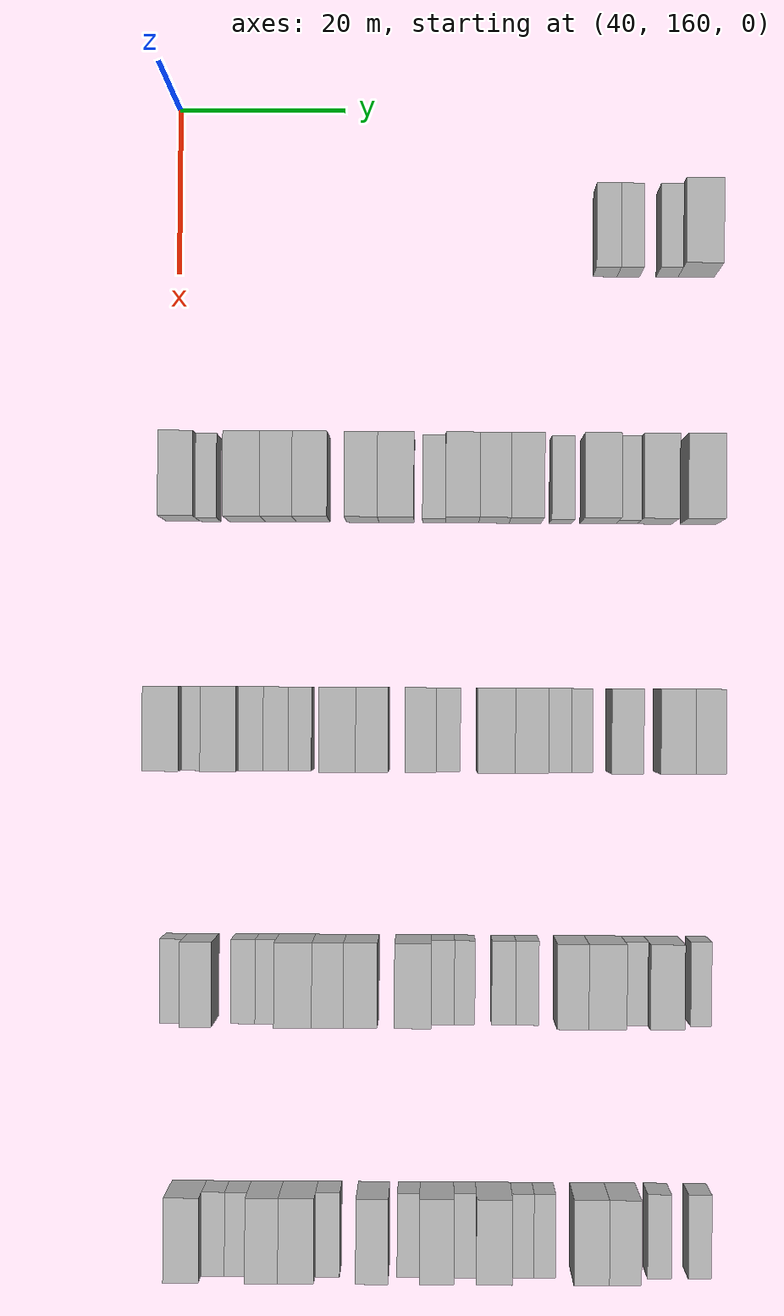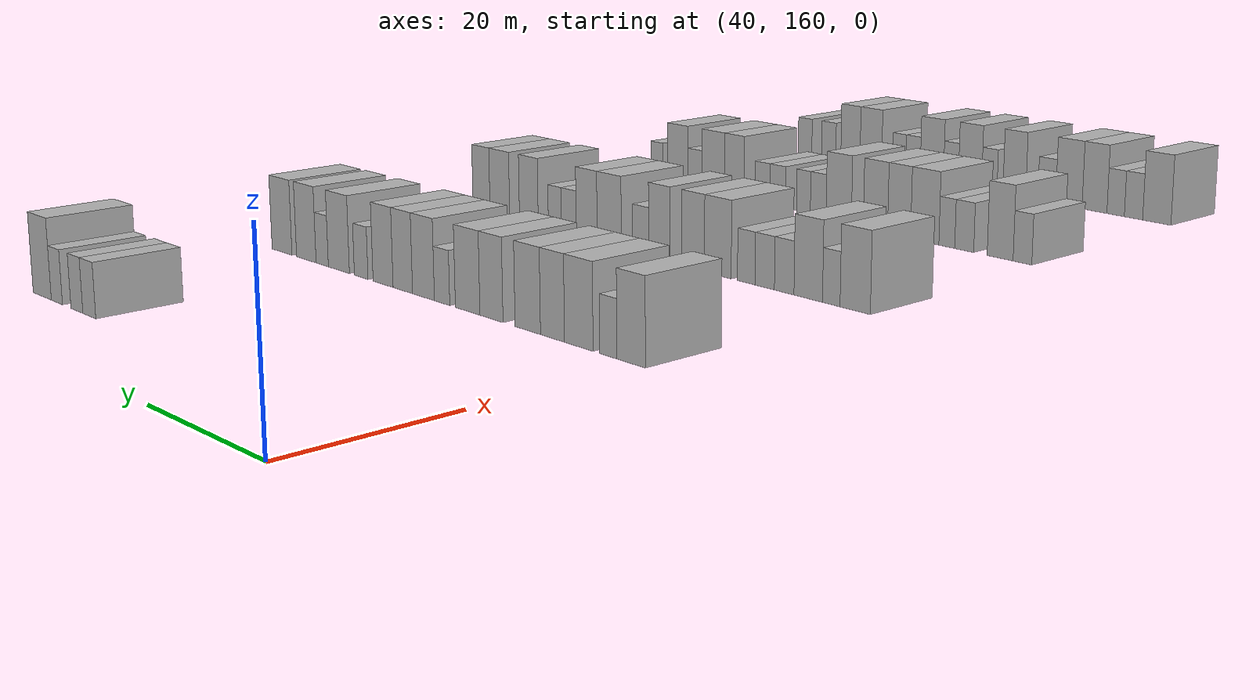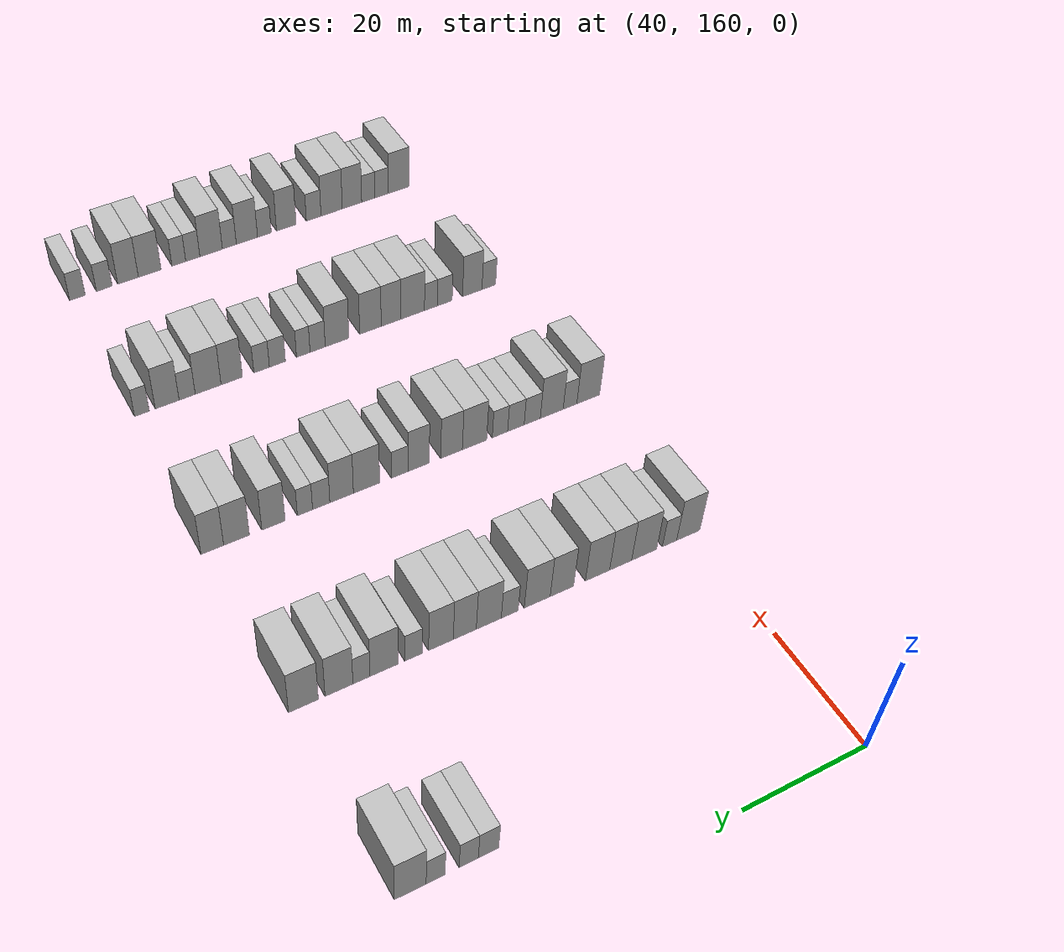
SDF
<sdf version="1.6">
 <world name="default">
  <model name="building_399">
   <static>1</static>
   <pose>55.0000 211.6552 0 0.000000 0.000000 0.000000</pose>
   <link name="link">
    <pose>0 0 3.00 0 0 0</pose>
    <collision name="collision"><geometry><box><size>10.0000 2.9199 6.0000</size></box></geometry></collision>
    <visual name="visual">
     <cast_shadows>0</cast_shadows>
     <geometry><box><size>10.0000 2.9199 6.0000</size></box></geometry>
     <material>
      <script>
       <uri>model://HANNAS_wall/materials/scripts</uri>
       <uri>model://HANNAS_wall/materials/textures</uri>
       <name>vrc/HANNAS_wall</name>
      </script>
     </material>
    </visual>
   </link>
  </model>
  <model name="building_400">
   <static>1</static>
   <pose>55.0000 214.4858 0 0.000000 0.000000 0.000000</pose>
   <link name="link">
    <pose>0 0 3.00 0 0 0</pose>
    <collision name="collision"><geometry><box><size>10.0000 2.7414 6.0000</size></box></geometry></collision>
    <visual name="visual">
     <cast_shadows>0</cast_shadows>
     <geometry><box><size>10.0000 2.7414 6.0000</size></box></geometry>
     <material>
      <script>
       <uri>model://HANNAS_wall/materials/scripts</uri>
       <uri>model://HANNAS_wall/materials/textures</uri>
       <name>vrc/HANNAS_wall</name>
      </script>
     </material>
    </visual>
   </link>
  </model>
  <model name="building_401">
   <static>1</static>
   <pose>55.0000 219.1830 0 0.000000 0.000000 0.000000</pose>
   <link name="link">
    <pose>0 0 3.00 0 0 0</pose>
    <collision name="collision"><geometry><box><size>10.0000 2.6530 6.0000</size></box></geometry></collision>
    <visual name="visual">
     <cast_shadows>0</cast_shadows>
     <geometry><box><size>10.0000 2.6530 6.0000</size></box></geometry>
     <material>
      <script>
       <uri>model://HANNAS_wall/materials/scripts</uri>
       <uri>model://HANNAS_wall/materials/textures</uri>
       <name>vrc/HANNAS_wall</name>
      </script>
     </material>
    </visual>
   </link>
  </model>
  <model name="building_402">
   <static>1</static>
   <pose>55.0000 222.7181 0 0.000000 0.000000 0.000000</pose>
   <link name="link">
    <pose>0 0 4.50 0 0 0</pose>
    <collision name="collision"><geometry><box><size>10.0000 4.4173 9.0000</size></box></geometry></collision>
    <visual name="visual">
     <cast_shadows>0</cast_shadows>
     <geometry><box><size>10.0000 4.4173 9.0000</size></box></geometry>
     <material>
      <script>
       <uri>model://HANNAS_wall/materials/scripts</uri>
       <uri>model://HANNAS_wall/materials/textures</uri>
       <name>vrc/HANNAS_wall</name>
      </script>
     </material>
    </visual>
   </link>
  </model>
  <model name="building_608">
   <static>1</static>
   <pose>85.0000 160.6625 0 0.000000 0.000000 0.000000</pose>
   <link name="link">
    <pose>0 0 4.50 0 0 0</pose>
    <collision name="collision"><geometry><box><size>10.0000 4.1030 9.0000</size></box></geometry></collision>
    <visual name="visual">
     <cast_shadows>0</cast_shadows>
     <geometry><box><size>10.0000 4.1030 9.0000</size></box></geometry>
     <material>
      <script>
       <uri>model://HANNAS_wall/materials/scripts</uri>
       <uri>model://HANNAS_wall/materials/textures</uri>
       <name>vrc/HANNAS_wall</name>
      </script>
     </material>
    </visual>
   </link>
  </model>
  <model name="building_609">
   <static>1</static>
   <pose>85.0000 163.9694 0 0.000000 0.000000 0.000000</pose>
   <link name="link">
    <pose>0 0 3.00 0 0 0</pose>
    <collision name="collision"><geometry><box><size>10.0000 2.5107 6.0000</size></box></geometry></collision>
    <visual name="visual">
     <cast_shadows>0</cast_shadows>
     <geometry><box><size>10.0000 2.5107 6.0000</size></box></geometry>
     <material>
      <script>
       <uri>model://HANNAS_wall/materials/scripts</uri>
       <uri>model://HANNAS_wall/materials/textures</uri>
       <name>vrc/HANNAS_wall</name>
      </script>
     </material>
    </visual>
   </link>
  </model>
  <model name="building_610">
   <static>1</static>
   <pose>85.0000 168.4031 0 0.000000 0.000000 0.000000</pose>
   <link name="link">
    <pose>0 0 4.50 0 0 0</pose>
    <collision name="collision"><geometry><box><size>10.0000 4.3568 9.0000</size></box></geometry></collision>
    <visual name="visual">
     <cast_shadows>0</cast_shadows>
     <geometry><box><size>10.0000 4.3568 9.0000</size></box></geometry>
     <material>
      <script>
       <uri>model://HANNAS_wall/materials/scripts</uri>
       <uri>model://HANNAS_wall/materials/textures</uri>
       <name>vrc/HANNAS_wall</name>
      </script>
     </material>
    </visual>
   </link>
  </model>
  <model name="building_611">
   <static>1</static>
   <pose>85.0000 172.4726 0 0.000000 0.000000 0.000000</pose>
   <link name="link">
    <pose>0 0 4.50 0 0 0</pose>
    <collision name="collision"><geometry><box><size>10.0000 3.7822 9.0000</size></box></geometry></collision>
    <visual name="visual">
     <cast_shadows>0</cast_shadows>
     <geometry><box><size>10.0000 3.7822 9.0000</size></box></geometry>
     <material>
      <script>
       <uri>model://HANNAS_wall/materials/scripts</uri>
       <uri>model://HANNAS_wall/materials/textures</uri>
       <name>vrc/HANNAS_wall</name>
      </script>
     </material>
    </visual>
   </link>
  </model>
  <model name="building_612">
   <static>1</static>
   <pose>85.0000 176.4215 0 0.000000 0.000000 0.000000</pose>
   <link name="link">
    <pose>0 0 4.50 0 0 0</pose>
    <collision name="collision"><geometry><box><size>10.0000 4.1155 9.0000</size></box></geometry></collision>
    <visual name="visual">
     <cast_shadows>0</cast_shadows>
     <geometry><box><size>10.0000 4.1155 9.0000</size></box></geometry>
     <material>
      <script>
       <uri>model://HANNAS_wall/materials/scripts</uri>
       <uri>model://HANNAS_wall/materials/textures</uri>
       <name>vrc/HANNAS_wall</name>
      </script>
     </material>
    </visual>
   </link>
  </model>
  <model name="building_613">
   <static>1</static>
   <pose>85.0000 182.4322 0 0.000000 0.000000 0.000000</pose>
   <link name="link">
    <pose>0 0 4.50 0 0 0</pose>
    <collision name="collision"><geometry><box><size>10.0000 3.9058 9.0000</size></box></geometry></collision>
    <visual name="visual">
     <cast_shadows>0</cast_shadows>
     <geometry><box><size>10.0000 3.9058 9.0000</size></box></geometry>
     <material>
      <script>
       <uri>model://HANNAS_wall/materials/scripts</uri>
       <uri>model://HANNAS_wall/materials/textures</uri>
       <name>vrc/HANNAS_wall</name>
      </script>
     </material>
    </visual>
   </link>
  </model>
  <model name="building_614">
   <static>1</static>
   <pose>85.0000 186.5285 0 0.000000 0.000000 0.000000</pose>
   <link name="link">
    <pose>0 0 4.50 0 0 0</pose>
    <collision name="collision"><geometry><box><size>10.0000 4.2868 9.0000</size></box></geometry></collision>
    <visual name="visual">
     <cast_shadows>0</cast_shadows>
     <geometry><box><size>10.0000 4.2868 9.0000</size></box></geometry>
     <material>
      <script>
       <uri>model://HANNAS_wall/materials/scripts</uri>
       <uri>model://HANNAS_wall/materials/textures</uri>
       <name>vrc/HANNAS_wall</name>
      </script>
     </material>
    </visual>
   </link>
  </model>
  <model name="building_615">
   <static>1</static>
   <pose>85.0000 191.0504 0 0.000000 0.000000 0.000000</pose>
   <link name="link">
    <pose>0 0 3.00 0 0 0</pose>
    <collision name="collision"><geometry><box><size>10.0000 2.7570 6.0000</size></box></geometry></collision>
    <visual name="visual">
     <cast_shadows>0</cast_shadows>
     <geometry><box><size>10.0000 2.7570 6.0000</size></box></geometry>
     <material>
      <script>
       <uri>model://HANNAS_wall/materials/scripts</uri>
       <uri>model://HANNAS_wall/materials/textures</uri>
       <name>vrc/HANNAS_wall</name>
      </script>
     </material>
    </visual>
   </link>
  </model>
  <model name="building_616">
   <static>1</static>
   <pose>85.0000 194.4459 0 0.000000 0.000000 0.000000</pose>
   <link name="link">
    <pose>0 0 4.50 0 0 0</pose>
    <collision name="collision"><geometry><box><size>10.0000 4.0340 9.0000</size></box></geometry></collision>
    <visual name="visual">
     <cast_shadows>0</cast_shadows>
     <geometry><box><size>10.0000 4.0340 9.0000</size></box></geometry>
     <material>
      <script>
       <uri>model://HANNAS_wall/materials/scripts</uri>
       <uri>model://HANNAS_wall/materials/textures</uri>
       <name>vrc/HANNAS_wall</name>
      </script>
     </material>
    </visual>
   </link>
  </model>
  <model name="building_617">
   <static>1</static>
   <pose>85.0000 198.3058 0 0.000000 0.000000 0.000000</pose>
   <link name="link">
    <pose>0 0 4.50 0 0 0</pose>
    <collision name="collision"><geometry><box><size>10.0000 3.6858 9.0000</size></box></geometry></collision>
    <visual name="visual">
     <cast_shadows>0</cast_shadows>
     <geometry><box><size>10.0000 3.6858 9.0000</size></box></geometry>
     <material>
      <script>
       <uri>model://HANNAS_wall/materials/scripts</uri>
       <uri>model://HANNAS_wall/materials/textures</uri>
       <name>vrc/HANNAS_wall</name>
      </script>
     </material>
    </visual>
   </link>
  </model>
  <model name="building_618">
   <static>1</static>
   <pose>85.0000 202.0970 0 0.000000 0.000000 0.000000</pose>
   <link name="link">
    <pose>0 0 4.50 0 0 0</pose>
    <collision name="collision"><geometry><box><size>10.0000 3.8965 9.0000</size></box></geometry></collision>
    <visual name="visual">
     <cast_shadows>0</cast_shadows>
     <geometry><box><size>10.0000 3.8965 9.0000</size></box></geometry>
     <material>
      <script>
       <uri>model://HANNAS_wall/materials/scripts</uri>
       <uri>model://HANNAS_wall/materials/textures</uri>
       <name>vrc/HANNAS_wall</name>
      </script>
     </material>
    </visual>
   </link>
  </model>
  <model name="building_619">
   <static>1</static>
   <pose>85.0000 206.4087 0 0.000000 0.000000 0.000000</pose>
   <link name="link">
    <pose>0 0 3.00 0 0 0</pose>
    <collision name="collision"><geometry><box><size>10.0000 2.7268 6.0000</size></box></geometry></collision>
    <visual name="visual">
     <cast_shadows>0</cast_shadows>
     <geometry><box><size>10.0000 2.7268 6.0000</size></box></geometry>
     <material>
      <script>
       <uri>model://HANNAS_wall/materials/scripts</uri>
       <uri>model://HANNAS_wall/materials/textures</uri>
       <name>vrc/HANNAS_wall</name>
      </script>
     </material>
    </visual>
   </link>
  </model>
  <model name="building_620">
   <static>1</static>
   <pose>85.0000 210.9471 0 0.000000 0.000000 0.000000</pose>
   <link name="link">
    <pose>0 0 4.50 0 0 0</pose>
    <collision name="collision"><geometry><box><size>10.0000 4.3500 9.0000</size></box></geometry></collision>
    <visual name="visual">
     <cast_shadows>0</cast_shadows>
     <geometry><box><size>10.0000 4.3500 9.0000</size></box></geometry>
     <material>
      <script>
       <uri>model://HANNAS_wall/materials/scripts</uri>
       <uri>model://HANNAS_wall/materials/textures</uri>
       <name>vrc/HANNAS_wall</name>
      </script>
     </material>
    </visual>
   </link>
  </model>
  <model name="building_621">
   <static>1</static>
   <pose>85.0000 214.4169 0 0.000000 0.000000 0.000000</pose>
   <link name="link">
    <pose>0 0 3.00 0 0 0</pose>
    <collision name="collision"><geometry><box><size>10.0000 2.5896 6.0000</size></box></geometry></collision>
    <visual name="visual">
     <cast_shadows>0</cast_shadows>
     <geometry><box><size>10.0000 2.5896 6.0000</size></box></geometry>
     <material>
      <script>
       <uri>model://HANNAS_wall/materials/scripts</uri>
       <uri>model://HANNAS_wall/materials/textures</uri>
       <name>vrc/HANNAS_wall</name>
      </script>
     </material>
    </visual>
   </link>
  </model>
  <model name="building_622">
   <static>1</static>
   <pose>85.0000 217.8153 0 0.000000 0.000000 0.000000</pose>
   <link name="link">
    <pose>0 0 4.50 0 0 0</pose>
    <collision name="collision"><geometry><box><size>10.0000 4.2072 9.0000</size></box></geometry></collision>
    <visual name="visual">
     <cast_shadows>0</cast_shadows>
     <geometry><box><size>10.0000 4.2072 9.0000</size></box></geometry>
     <material>
      <script>
       <uri>model://HANNAS_wall/materials/scripts</uri>
       <uri>model://HANNAS_wall/materials/textures</uri>
       <name>vrc/HANNAS_wall</name>
      </script>
     </material>
    </visual>
   </link>
  </model>
  <model name="building_623">
   <static>1</static>
   <pose>85.0000 223.1334 0 0.000000 0.000000 0.000000</pose>
   <link name="link">
    <pose>0 0 4.50 0 0 0</pose>
    <collision name="collision"><geometry><box><size>10.0000 4.4290 9.0000</size></box></geometry></collision>
    <visual name="visual">
     <cast_shadows>0</cast_shadows>
     <geometry><box><size>10.0000 4.4290 9.0000</size></box></geometry>
     <material>
      <script>
       <uri>model://HANNAS_wall/materials/scripts</uri>
       <uri>model://HANNAS_wall/materials/textures</uri>
       <name>vrc/HANNAS_wall</name>
      </script>
     </material>
    </visual>
   </link>
  </model>
  <model name="building_839">
   <static>1</static>
   <pose>115.0000 159.1019 0 0.000000 0.000000 0.000000</pose>
   <link name="link">
    <pose>0 0 4.50 0 0 0</pose>
    <collision name="collision"><geometry><box><size>10.0000 4.2605 9.0000</size></box></geometry></collision>
    <visual name="visual">
     <cast_shadows>0</cast_shadows>
     <geometry><box><size>10.0000 4.2605 9.0000</size></box></geometry>
     <material>
      <script>
       <uri>model://HANNAS_wall/materials/scripts</uri>
       <uri>model://HANNAS_wall/materials/textures</uri>
       <name>vrc/HANNAS_wall</name>
      </script>
     </material>
    </visual>
   </link>
  </model>
  <model name="building_840">
   <static>1</static>
   <pose>115.0000 162.4961 0 0.000000 0.000000 0.000000</pose>
   <link name="link">
    <pose>0 0 3.00 0 0 0</pose>
    <collision name="collision"><geometry><box><size>10.0000 2.5279 6.0000</size></box></geometry></collision>
    <visual name="visual">
     <cast_shadows>0</cast_shadows>
     <geometry><box><size>10.0000 2.5279 6.0000</size></box></geometry>
     <material>
      <script>
       <uri>model://HANNAS_wall/materials/scripts</uri>
       <uri>model://HANNAS_wall/materials/textures</uri>
       <name>vrc/HANNAS_wall</name>
      </script>
     </material>
    </visual>
   </link>
  </model>
  <model name="building_841">
   <static>1</static>
   <pose>115.0000 165.8625 0 0.000000 0.000000 0.000000</pose>
   <link name="link">
    <pose>0 0 4.50 0 0 0</pose>
    <collision name="collision"><geometry><box><size>10.0000 4.2050 9.0000</size></box></geometry></collision>
    <visual name="visual">
     <cast_shadows>0</cast_shadows>
     <geometry><box><size>10.0000 4.2050 9.0000</size></box></geometry>
     <material>
      <script>
       <uri>model://HANNAS_wall/materials/scripts</uri>
       <uri>model://HANNAS_wall/materials/textures</uri>
       <name>vrc/HANNAS_wall</name>
      </script>
     </material>
    </visual>
   </link>
  </model>
  <model name="building_842">
   <static>1</static>
   <pose>115.0000 169.4436 0 0.000000 0.000000 0.000000</pose>
   <link name="link">
    <pose>0 0 3.00 0 0 0</pose>
    <collision name="collision"><geometry><box><size>10.0000 2.9572 6.0000</size></box></geometry></collision>
    <visual name="visual">
     <cast_shadows>0</cast_shadows>
     <geometry><box><size>10.0000 2.9572 6.0000</size></box></geometry>
     <material>
      <script>
       <uri>model://HANNAS_wall/materials/scripts</uri>
       <uri>model://HANNAS_wall/materials/textures</uri>
       <name>vrc/HANNAS_wall</name>
      </script>
     </material>
    </visual>
   </link>
  </model>
  <model name="building_843">
   <static>1</static>
   <pose>115.0000 172.4156 0 0.000000 0.000000 0.000000</pose>
   <link name="link">
    <pose>0 0 3.00 0 0 0</pose>
    <collision name="collision"><geometry><box><size>10.0000 2.9867 6.0000</size></box></geometry></collision>
    <visual name="visual">
     <cast_shadows>0</cast_shadows>
     <geometry><box><size>10.0000 2.9867 6.0000</size></box></geometry>
     <material>
      <script>
       <uri>model://HANNAS_wall/materials/scripts</uri>
       <uri>model://HANNAS_wall/materials/textures</uri>
       <name>vrc/HANNAS_wall</name>
      </script>
     </material>
    </visual>
   </link>
  </model>
  <model name="building_844">
   <static>1</static>
   <pose>115.0000 175.2916 0 0.000000 0.000000 0.000000</pose>
   <link name="link">
    <pose>0 0 3.00 0 0 0</pose>
    <collision name="collision"><geometry><box><size>10.0000 2.7654 6.0000</size></box></geometry></collision>
    <visual name="visual">
     <cast_shadows>0</cast_shadows>
     <geometry><box><size>10.0000 2.7654 6.0000</size></box></geometry>
     <material>
      <script>
       <uri>model://HANNAS_wall/materials/scripts</uri>
       <uri>model://HANNAS_wall/materials/textures</uri>
       <name>vrc/HANNAS_wall</name>
      </script>
     </material>
    </visual>
   </link>
  </model>
  <model name="building_845">
   <static>1</static>
   <pose>115.0000 179.8372 0 0.000000 0.000000 0.000000</pose>
   <link name="link">
    <pose>0 0 4.50 0 0 0</pose>
    <collision name="collision"><geometry><box><size>10.0000 4.3258 9.0000</size></box></geometry></collision>
    <visual name="visual">
     <cast_shadows>0</cast_shadows>
     <geometry><box><size>10.0000 4.3258 9.0000</size></box></geometry>
     <material>
      <script>
       <uri>model://HANNAS_wall/materials/scripts</uri>
       <uri>model://HANNAS_wall/materials/textures</uri>
       <name>vrc/HANNAS_wall</name>
      </script>
     </material>
    </visual>
   </link>
  </model>
  <model name="building_846">
   <static>1</static>
   <pose>115.0000 183.9103 0 0.000000 0.000000 0.000000</pose>
   <link name="link">
    <pose>0 0 4.50 0 0 0</pose>
    <collision name="collision"><geometry><box><size>10.0000 3.8206 9.0000</size></box></geometry></collision>
    <visual name="visual">
     <cast_shadows>0</cast_shadows>
     <geometry><box><size>10.0000 3.8206 9.0000</size></box></geometry>
     <material>
      <script>
       <uri>model://HANNAS_wall/materials/scripts</uri>
       <uri>model://HANNAS_wall/materials/textures</uri>
       <name>vrc/HANNAS_wall</name>
      </script>
     </material>
    </visual>
   </link>
  </model>
  <model name="building_847">
   <static>1</static>
   <pose>115.0000 189.6555 0 0.000000 0.000000 0.000000</pose>
   <link name="link">
    <pose>0 0 4.50 0 0 0</pose>
    <collision name="collision"><geometry><box><size>10.0000 3.6697 9.0000</size></box></geometry></collision>
    <visual name="visual">
     <cast_shadows>0</cast_shadows>
     <geometry><box><size>10.0000 3.6697 9.0000</size></box></geometry>
     <material>
      <script>
       <uri>model://HANNAS_wall/materials/scripts</uri>
       <uri>model://HANNAS_wall/materials/textures</uri>
       <name>vrc/HANNAS_wall</name>
      </script>
     </material>
    </visual>
   </link>
  </model>
  <model name="building_848">
   <static>1</static>
   <pose>115.0000 192.9155 0 0.000000 0.000000 0.000000</pose>
   <link name="link">
    <pose>0 0 3.00 0 0 0</pose>
    <collision name="collision"><geometry><box><size>10.0000 2.8504 6.0000</size></box></geometry></collision>
    <visual name="visual">
     <cast_shadows>0</cast_shadows>
     <geometry><box><size>10.0000 2.8504 6.0000</size></box></geometry>
     <material>
      <script>
       <uri>model://HANNAS_wall/materials/scripts</uri>
       <uri>model://HANNAS_wall/materials/textures</uri>
       <name>vrc/HANNAS_wall</name>
      </script>
     </material>
    </visual>
   </link>
  </model>
  <model name="building_849">
   <static>1</static>
   <pose>115.0000 198.5505 0 0.000000 0.000000 0.000000</pose>
   <link name="link">
    <pose>0 0 4.50 0 0 0</pose>
    <collision name="collision"><geometry><box><size>10.0000 4.4196 9.0000</size></box></geometry></collision>
    <visual name="visual">
     <cast_shadows>0</cast_shadows>
     <geometry><box><size>10.0000 4.4196 9.0000</size></box></geometry>
     <material>
      <script>
       <uri>model://HANNAS_wall/materials/scripts</uri>
       <uri>model://HANNAS_wall/materials/textures</uri>
       <name>vrc/HANNAS_wall</name>
      </script>
     </material>
    </visual>
   </link>
  </model>
  <model name="building_850">
   <static>1</static>
   <pose>115.0000 202.7268 0 0.000000 0.000000 0.000000</pose>
   <link name="link">
    <pose>0 0 4.50 0 0 0</pose>
    <collision name="collision"><geometry><box><size>10.0000 3.9329 9.0000</size></box></geometry></collision>
    <visual name="visual">
     <cast_shadows>0</cast_shadows>
     <geometry><box><size>10.0000 3.9329 9.0000</size></box></geometry>
     <material>
      <script>
       <uri>model://HANNAS_wall/materials/scripts</uri>
       <uri>model://HANNAS_wall/materials/textures</uri>
       <name>vrc/HANNAS_wall</name>
      </script>
     </material>
    </visual>
   </link>
  </model>
  <model name="building_851">
   <static>1</static>
   <pose>115.0000 206.1277 0 0.000000 0.000000 0.000000</pose>
   <link name="link">
    <pose>0 0 3.00 0 0 0</pose>
    <collision name="collision"><geometry><box><size>10.0000 2.8688 6.0000</size></box></geometry></collision>
    <visual name="visual">
     <cast_shadows>0</cast_shadows>
     <geometry><box><size>10.0000 2.8688 6.0000</size></box></geometry>
     <material>
      <script>
       <uri>model://HANNAS_wall/materials/scripts</uri>
       <uri>model://HANNAS_wall/materials/textures</uri>
       <name>vrc/HANNAS_wall</name>
      </script>
     </material>
    </visual>
   </link>
  </model>
  <model name="building_852">
   <static>1</static>
   <pose>115.0000 208.8140 0 0.000000 0.000000 0.000000</pose>
   <link name="link">
    <pose>0 0 3.00 0 0 0</pose>
    <collision name="collision"><geometry><box><size>10.0000 2.5037 6.0000</size></box></geometry></collision>
    <visual name="visual">
     <cast_shadows>0</cast_shadows>
     <geometry><box><size>10.0000 2.5037 6.0000</size></box></geometry>
     <material>
      <script>
       <uri>model://HANNAS_wall/materials/scripts</uri>
       <uri>model://HANNAS_wall/materials/textures</uri>
       <name>vrc/HANNAS_wall</name>
      </script>
     </material>
    </visual>
   </link>
  </model>
  <model name="building_853">
   <static>1</static>
   <pose>115.0000 213.9521 0 0.000000 0.000000 0.000000</pose>
   <link name="link">
    <pose>0 0 4.50 0 0 0</pose>
    <collision name="collision"><geometry><box><size>10.0000 3.7725 9.0000</size></box></geometry></collision>
    <visual name="visual">
     <cast_shadows>0</cast_shadows>
     <geometry><box><size>10.0000 3.7725 9.0000</size></box></geometry>
     <material>
      <script>
       <uri>model://HANNAS_wall/materials/scripts</uri>
       <uri>model://HANNAS_wall/materials/textures</uri>
       <name>vrc/HANNAS_wall</name>
      </script>
     </material>
    </visual>
   </link>
  </model>
  <model name="building_854">
   <static>1</static>
   <pose>115.0000 219.8862 0 0.000000 0.000000 0.000000</pose>
   <link name="link">
    <pose>0 0 4.50 0 0 0</pose>
    <collision name="collision"><geometry><box><size>10.0000 4.0958 9.0000</size></box></geometry></collision>
    <visual name="visual">
     <cast_shadows>0</cast_shadows>
     <geometry><box><size>10.0000 4.0958 9.0000</size></box></geometry>
     <material>
      <script>
       <uri>model://HANNAS_wall/materials/scripts</uri>
       <uri>model://HANNAS_wall/materials/textures</uri>
       <name>vrc/HANNAS_wall</name>
      </script>
     </material>
    </visual>
   </link>
  </model>
  <model name="building_855">
   <static>1</static>
   <pose>115.0000 223.7349 0 0.000000 0.000000 0.000000</pose>
   <link name="link">
    <pose>0 0 4.50 0 0 0</pose>
    <collision name="collision"><geometry><box><size>10.0000 3.6015 9.0000</size></box></geometry></collision>
    <visual name="visual">
     <cast_shadows>0</cast_shadows>
     <geometry><box><size>10.0000 3.6015 9.0000</size></box></geometry>
     <material>
      <script>
       <uri>model://HANNAS_wall/materials/scripts</uri>
       <uri>model://HANNAS_wall/materials/textures</uri>
       <name>vrc/HANNAS_wall</name>
      </script>
     </material>
    </visual>
   </link>
  </model>
  <model name="building_1063">
   <static>1</static>
   <pose>145.0000 160.1419 0 0.000000 0.000000 0.000000</pose>
   <link name="link">
    <pose>0 0 3.00 0 0 0</pose>
    <collision name="collision"><geometry><box><size>10.0000 2.6793 6.0000</size></box></geometry></collision>
    <visual name="visual">
     <cast_shadows>0</cast_shadows>
     <geometry><box><size>10.0000 2.6793 6.0000</size></box></geometry>
     <material>
      <script>
       <uri>model://HANNAS_wall/materials/scripts</uri>
       <uri>model://HANNAS_wall/materials/textures</uri>
       <name>vrc/HANNAS_wall</name>
      </script>
     </material>
    </visual>
   </link>
  </model>
  <model name="building_1064">
   <static>1</static>
   <pose>145.0000 163.3742 0 0.000000 0.000000 0.000000</pose>
   <link name="link">
    <pose>0 0 4.50 0 0 0</pose>
    <collision name="collision"><geometry><box><size>10.0000 3.7852 9.0000</size></box></geometry></collision>
    <visual name="visual">
     <cast_shadows>0</cast_shadows>
     <geometry><box><size>10.0000 3.7852 9.0000</size></box></geometry>
     <material>
      <script>
       <uri>model://HANNAS_wall/materials/scripts</uri>
       <uri>model://HANNAS_wall/materials/textures</uri>
       <name>vrc/HANNAS_wall</name>
      </script>
     </material>
    </visual>
   </link>
  </model>
  <model name="building_1065">
   <static>1</static>
   <pose>145.0000 168.7018 0 0.000000 0.000000 0.000000</pose>
   <link name="link">
    <pose>0 0 3.00 0 0 0</pose>
    <collision name="collision"><geometry><box><size>10.0000 2.8700 6.0000</size></box></geometry></collision>
    <visual name="visual">
     <cast_shadows>0</cast_shadows>
     <geometry><box><size>10.0000 2.8700 6.0000</size></box></geometry>
     <material>
      <script>
       <uri>model://HANNAS_wall/materials/scripts</uri>
       <uri>model://HANNAS_wall/materials/textures</uri>
       <name>vrc/HANNAS_wall</name>
      </script>
     </material>
    </visual>
   </link>
  </model>
  <model name="building_1066">
   <static>1</static>
   <pose>145.0000 171.3562 0 0.000000 0.000000 0.000000</pose>
   <link name="link">
    <pose>0 0 3.00 0 0 0</pose>
    <collision name="collision"><geometry><box><size>10.0000 2.4388 6.0000</size></box></geometry></collision>
    <visual name="visual">
     <cast_shadows>0</cast_shadows>
     <geometry><box><size>10.0000 2.4388 6.0000</size></box></geometry>
     <material>
      <script>
       <uri>model://HANNAS_wall/materials/scripts</uri>
       <uri>model://HANNAS_wall/materials/textures</uri>
       <name>vrc/HANNAS_wall</name>
      </script>
     </material>
    </visual>
   </link>
  </model>
  <model name="building_1067">
   <static>1</static>
   <pose>145.0000 174.7955 0 0.000000 0.000000 0.000000</pose>
   <link name="link">
    <pose>0 0 4.50 0 0 0</pose>
    <collision name="collision"><geometry><box><size>10.0000 4.4399 9.0000</size></box></geometry></collision>
    <visual name="visual">
     <cast_shadows>0</cast_shadows>
     <geometry><box><size>10.0000 4.4399 9.0000</size></box></geometry>
     <material>
      <script>
       <uri>model://HANNAS_wall/materials/scripts</uri>
       <uri>model://HANNAS_wall/materials/textures</uri>
       <name>vrc/HANNAS_wall</name>
      </script>
     </material>
    </visual>
   </link>
  </model>
  <model name="building_1068">
   <static>1</static>
   <pose>145.0000 178.8718 0 0.000000 0.000000 0.000000</pose>
   <link name="link">
    <pose>0 0 4.50 0 0 0</pose>
    <collision name="collision"><geometry><box><size>10.0000 3.7128 9.0000</size></box></geometry></collision>
    <visual name="visual">
     <cast_shadows>0</cast_shadows>
     <geometry><box><size>10.0000 3.7128 9.0000</size></box></geometry>
     <material>
      <script>
       <uri>model://HANNAS_wall/materials/scripts</uri>
       <uri>model://HANNAS_wall/materials/textures</uri>
       <name>vrc/HANNAS_wall</name>
      </script>
     </material>
    </visual>
   </link>
  </model>
  <model name="building_1069">
   <static>1</static>
   <pose>145.0000 182.7253 0 0.000000 0.000000 0.000000</pose>
   <link name="link">
    <pose>0 0 4.50 0 0 0</pose>
    <collision name="collision"><geometry><box><size>10.0000 3.9942 9.0000</size></box></geometry></collision>
    <visual name="visual">
     <cast_shadows>0</cast_shadows>
     <geometry><box><size>10.0000 3.9942 9.0000</size></box></geometry>
     <material>
      <script>
       <uri>model://HANNAS_wall/materials/scripts</uri>
       <uri>model://HANNAS_wall/materials/textures</uri>
       <name>vrc/HANNAS_wall</name>
      </script>
     </material>
    </visual>
   </link>
  </model>
  <model name="building_1070">
   <static>1</static>
   <pose>145.0000 188.8832 0 0.000000 0.000000 0.000000</pose>
   <link name="link">
    <pose>0 0 4.50 0 0 0</pose>
    <collision name="collision"><geometry><box><size>10.0000 4.3217 9.0000</size></box></geometry></collision>
    <visual name="visual">
     <cast_shadows>0</cast_shadows>
     <geometry><box><size>10.0000 4.3217 9.0000</size></box></geometry>
     <material>
      <script>
       <uri>model://HANNAS_wall/materials/scripts</uri>
       <uri>model://HANNAS_wall/materials/textures</uri>
       <name>vrc/HANNAS_wall</name>
      </script>
     </material>
    </visual>
   </link>
  </model>
  <model name="building_1071">
   <static>1</static>
   <pose>145.0000 192.4209 0 0.000000 0.000000 0.000000</pose>
   <link name="link">
    <pose>0 0 3.00 0 0 0</pose>
    <collision name="collision"><geometry><box><size>10.0000 2.7535 6.0000</size></box></geometry></collision>
    <visual name="visual">
     <cast_shadows>0</cast_shadows>
     <geometry><box><size>10.0000 2.7535 6.0000</size></box></geometry>
     <material>
      <script>
       <uri>model://HANNAS_wall/materials/scripts</uri>
       <uri>model://HANNAS_wall/materials/textures</uri>
       <name>vrc/HANNAS_wall</name>
      </script>
     </material>
    </visual>
   </link>
  </model>
  <model name="building_1072">
   <static>1</static>
   <pose>145.0000 195.0165 0 0.000000 0.000000 0.000000</pose>
   <link name="link">
    <pose>0 0 3.00 0 0 0</pose>
    <collision name="collision"><geometry><box><size>10.0000 2.4377 6.0000</size></box></geometry></collision>
    <visual name="visual">
     <cast_shadows>0</cast_shadows>
     <geometry><box><size>10.0000 2.4377 6.0000</size></box></geometry>
     <material>
      <script>
       <uri>model://HANNAS_wall/materials/scripts</uri>
       <uri>model://HANNAS_wall/materials/textures</uri>
       <name>vrc/HANNAS_wall</name>
      </script>
     </material>
    </visual>
   </link>
  </model>
  <model name="building_1073">
   <static>1</static>
   <pose>145.0000 199.6575 0 0.000000 0.000000 0.000000</pose>
   <link name="link">
    <pose>0 0 3.00 0 0 0</pose>
    <collision name="collision"><geometry><box><size>10.0000 2.8443 6.0000</size></box></geometry></collision>
    <visual name="visual">
     <cast_shadows>0</cast_shadows>
     <geometry><box><size>10.0000 2.8443 6.0000</size></box></geometry>
     <material>
      <script>
       <uri>model://HANNAS_wall/materials/scripts</uri>
       <uri>model://HANNAS_wall/materials/textures</uri>
       <name>vrc/HANNAS_wall</name>
      </script>
     </material>
    </visual>
   </link>
  </model>
  <model name="building_1074">
   <static>1</static>
   <pose>145.0000 202.4563 0 0.000000 0.000000 0.000000</pose>
   <link name="link">
    <pose>0 0 3.00 0 0 0</pose>
    <collision name="collision"><geometry><box><size>10.0000 2.7533 6.0000</size></box></geometry></collision>
    <visual name="visual">
     <cast_shadows>0</cast_shadows>
     <geometry><box><size>10.0000 2.7533 6.0000</size></box></geometry>
     <material>
      <script>
       <uri>model://HANNAS_wall/materials/scripts</uri>
       <uri>model://HANNAS_wall/materials/textures</uri>
       <name>vrc/HANNAS_wall</name>
      </script>
     </material>
    </visual>
   </link>
  </model>
  <model name="building_1075">
   <static>1</static>
   <pose>145.0000 207.7000 0 0.000000 0.000000 0.000000</pose>
   <link name="link">
    <pose>0 0 4.50 0 0 0</pose>
    <collision name="collision"><geometry><box><size>10.0000 3.7341 9.0000</size></box></geometry></collision>
    <visual name="visual">
     <cast_shadows>0</cast_shadows>
     <geometry><box><size>10.0000 3.7341 9.0000</size></box></geometry>
     <material>
      <script>
       <uri>model://HANNAS_wall/materials/scripts</uri>
       <uri>model://HANNAS_wall/materials/textures</uri>
       <name>vrc/HANNAS_wall</name>
      </script>
     </material>
    </visual>
   </link>
  </model>
  <model name="building_1076">
   <static>1</static>
   <pose>145.0000 211.8009 0 0.000000 0.000000 0.000000</pose>
   <link name="link">
    <pose>0 0 4.50 0 0 0</pose>
    <collision name="collision"><geometry><box><size>10.0000 4.4678 9.0000</size></box></geometry></collision>
    <visual name="visual">
     <cast_shadows>0</cast_shadows>
     <geometry><box><size>10.0000 4.4678 9.0000</size></box></geometry>
     <material>
      <script>
       <uri>model://HANNAS_wall/materials/scripts</uri>
       <uri>model://HANNAS_wall/materials/textures</uri>
       <name>vrc/HANNAS_wall</name>
      </script>
     </material>
    </visual>
   </link>
  </model>
  <model name="building_1077">
   <static>1</static>
   <pose>145.0000 215.4156 0 0.000000 0.000000 0.000000</pose>
   <link name="link">
    <pose>0 0 3.00 0 0 0</pose>
    <collision name="collision"><geometry><box><size>10.0000 2.7615 6.0000</size></box></geometry></collision>
    <visual name="visual">
     <cast_shadows>0</cast_shadows>
     <geometry><box><size>10.0000 2.7615 6.0000</size></box></geometry>
     <material>
      <script>
       <uri>model://HANNAS_wall/materials/scripts</uri>
       <uri>model://HANNAS_wall/materials/textures</uri>
       <name>vrc/HANNAS_wall</name>
      </script>
     </material>
    </visual>
   </link>
  </model>
  <model name="building_1078">
   <static>1</static>
   <pose>145.0000 218.8249 0 0.000000 0.000000 0.000000</pose>
   <link name="link">
    <pose>0 0 4.50 0 0 0</pose>
    <collision name="collision"><geometry><box><size>10.0000 4.0572 9.0000</size></box></geometry></collision>
    <visual name="visual">
     <cast_shadows>0</cast_shadows>
     <geometry><box><size>10.0000 4.0572 9.0000</size></box></geometry>
     <material>
      <script>
       <uri>model://HANNAS_wall/materials/scripts</uri>
       <uri>model://HANNAS_wall/materials/textures</uri>
       <name>vrc/HANNAS_wall</name>
      </script>
     </material>
    </visual>
   </link>
  </model>
  <model name="building_1079">
   <static>1</static>
   <pose>145.0000 223.0940 0 0.000000 0.000000 0.000000</pose>
   <link name="link">
    <pose>0 0 3.00 0 0 0</pose>
    <collision name="collision"><geometry><box><size>10.0000 2.4808 6.0000</size></box></geometry></collision>
    <visual name="visual">
     <cast_shadows>0</cast_shadows>
     <geometry><box><size>10.0000 2.4808 6.0000</size></box></geometry>
     <material>
      <script>
       <uri>model://HANNAS_wall/materials/scripts</uri>
       <uri>model://HANNAS_wall/materials/textures</uri>
       <name>vrc/HANNAS_wall</name>
      </script>
     </material>
    </visual>
   </link>
  </model>
  <model name="building_1288">
   <static>1</static>
   <pose>175.0000 161.8345 0 0.000000 0.000000 0.000000</pose>
   <link name="link">
    <pose>0 0 4.50 0 0 0</pose>
    <collision name="collision"><geometry><box><size>10.0000 4.1724 9.0000</size></box></geometry></collision>
    <visual name="visual">
     <cast_shadows>0</cast_shadows>
     <geometry><box><size>10.0000 4.1724 9.0000</size></box></geometry>
     <material>
      <script>
       <uri>model://HANNAS_wall/materials/scripts</uri>
       <uri>model://HANNAS_wall/materials/textures</uri>
       <name>vrc/HANNAS_wall</name>
      </script>
     </material>
    </visual>
   </link>
  </model>
  <model name="building_1289">
   <static>1</static>
   <pose>175.0000 165.2982 0 0.000000 0.000000 0.000000</pose>
   <link name="link">
    <pose>0 0 3.00 0 0 0</pose>
    <collision name="collision"><geometry><box><size>10.0000 2.7550 6.0000</size></box></geometry></collision>
    <visual name="visual">
     <cast_shadows>0</cast_shadows>
     <geometry><box><size>10.0000 2.7550 6.0000</size></box></geometry>
     <material>
      <script>
       <uri>model://HANNAS_wall/materials/scripts</uri>
       <uri>model://HANNAS_wall/materials/textures</uri>
       <name>vrc/HANNAS_wall</name>
      </script>
     </material>
    </visual>
   </link>
  </model>
  <model name="building_1290">
   <static>1</static>
   <pose>175.0000 168.0080 0 0.000000 0.000000 0.000000</pose>
   <link name="link">
    <pose>0 0 3.00 0 0 0</pose>
    <collision name="collision"><geometry><box><size>10.0000 2.6646 6.0000</size></box></geometry></collision>
    <visual name="visual">
     <cast_shadows>0</cast_shadows>
     <geometry><box><size>10.0000 2.6646 6.0000</size></box></geometry>
     <material>
      <script>
       <uri>model://HANNAS_wall/materials/scripts</uri>
       <uri>model://HANNAS_wall/materials/textures</uri>
       <name>vrc/HANNAS_wall</name>
      </script>
     </material>
    </visual>
   </link>
  </model>
  <model name="building_1291">
   <static>1</static>
   <pose>175.0000 171.2821 0 0.000000 0.000000 0.000000</pose>
   <link name="link">
    <pose>0 0 4.50 0 0 0</pose>
    <collision name="collision"><geometry><box><size>10.0000 3.8835 9.0000</size></box></geometry></collision>
    <visual name="visual">
     <cast_shadows>0</cast_shadows>
     <geometry><box><size>10.0000 3.8835 9.0000</size></box></geometry>
     <material>
      <script>
       <uri>model://HANNAS_wall/materials/scripts</uri>
       <uri>model://HANNAS_wall/materials/textures</uri>
       <name>vrc/HANNAS_wall</name>
      </script>
     </material>
    </visual>
   </link>
  </model>
  <model name="building_1292">
   <static>1</static>
   <pose>175.0000 175.3374 0 0.000000 0.000000 0.000000</pose>
   <link name="link">
    <pose>0 0 4.50 0 0 0</pose>
    <collision name="collision"><geometry><box><size>10.0000 4.2272 9.0000</size></box></geometry></collision>
    <visual name="visual">
     <cast_shadows>0</cast_shadows>
     <geometry><box><size>10.0000 4.2272 9.0000</size></box></geometry>
     <material>
      <script>
       <uri>model://HANNAS_wall/materials/scripts</uri>
       <uri>model://HANNAS_wall/materials/textures</uri>
       <name>vrc/HANNAS_wall</name>
      </script>
     </material>
    </visual>
   </link>
  </model>
  <model name="building_1293">
   <static>1</static>
   <pose>175.0000 178.9021 0 0.000000 0.000000 0.000000</pose>
   <link name="link">
    <pose>0 0 3.00 0 0 0</pose>
    <collision name="collision"><geometry><box><size>10.0000 2.9020 6.0000</size></box></geometry></collision>
    <visual name="visual">
     <cast_shadows>0</cast_shadows>
     <geometry><box><size>10.0000 2.9020 6.0000</size></box></geometry>
     <material>
      <script>
       <uri>model://HANNAS_wall/materials/scripts</uri>
       <uri>model://HANNAS_wall/materials/textures</uri>
       <name>vrc/HANNAS_wall</name>
      </script>
     </material>
    </visual>
   </link>
  </model>
  <model name="building_1294">
   <static>1</static>
   <pose>175.0000 184.2621 0 0.000000 0.000000 0.000000</pose>
   <link name="link">
    <pose>0 0 4.50 0 0 0</pose>
    <collision name="collision"><geometry><box><size>10.0000 3.8182 9.0000</size></box></geometry></collision>
    <visual name="visual">
     <cast_shadows>0</cast_shadows>
     <geometry><box><size>10.0000 3.8182 9.0000</size></box></geometry>
     <material>
      <script>
       <uri>model://HANNAS_wall/materials/scripts</uri>
       <uri>model://HANNAS_wall/materials/textures</uri>
       <name>vrc/HANNAS_wall</name>
      </script>
     </material>
    </visual>
   </link>
  </model>
  <model name="building_1295">
   <static>1</static>
   <pose>175.0000 188.4968 0 0.000000 0.000000 0.000000</pose>
   <link name="link">
    <pose>0 0 3.00 0 0 0</pose>
    <collision name="collision"><geometry><box><size>10.0000 2.6512 6.0000</size></box></geometry></collision>
    <visual name="visual">
     <cast_shadows>0</cast_shadows>
     <geometry><box><size>10.0000 2.6512 6.0000</size></box></geometry>
     <material>
      <script>
       <uri>model://HANNAS_wall/materials/scripts</uri>
       <uri>model://HANNAS_wall/materials/textures</uri>
       <name>vrc/HANNAS_wall</name>
      </script>
     </material>
    </visual>
   </link>
  </model>
  <model name="building_1296">
   <static>1</static>
   <pose>175.0000 191.8572 0 0.000000 0.000000 0.000000</pose>
   <link name="link">
    <pose>0 0 4.50 0 0 0</pose>
    <collision name="collision"><geometry><box><size>10.0000 4.0695 9.0000</size></box></geometry></collision>
    <visual name="visual">
     <cast_shadows>0</cast_shadows>
     <geometry><box><size>10.0000 4.0695 9.0000</size></box></geometry>
     <material>
      <script>
       <uri>model://HANNAS_wall/materials/scripts</uri>
       <uri>model://HANNAS_wall/materials/textures</uri>
       <name>vrc/HANNAS_wall</name>
      </script>
     </material>
    </visual>
   </link>
  </model>
  <model name="building_1297">
   <static>1</static>
   <pose>175.0000 195.2130 0 0.000000 0.000000 0.000000</pose>
   <link name="link">
    <pose>0 0 3.00 0 0 0</pose>
    <collision name="collision"><geometry><box><size>10.0000 2.6422 6.0000</size></box></geometry></collision>
    <visual name="visual">
     <cast_shadows>0</cast_shadows>
     <geometry><box><size>10.0000 2.6422 6.0000</size></box></geometry>
     <material>
      <script>
       <uri>model://HANNAS_wall/materials/scripts</uri>
       <uri>model://HANNAS_wall/materials/textures</uri>
       <name>vrc/HANNAS_wall</name>
      </script>
     </material>
    </visual>
   </link>
  </model>
  <model name="building_1298">
   <static>1</static>
   <pose>175.0000 198.6528 0 0.000000 0.000000 0.000000</pose>
   <link name="link">
    <pose>0 0 4.50 0 0 0</pose>
    <collision name="collision"><geometry><box><size>10.0000 4.2373 9.0000</size></box></geometry></collision>
    <visual name="visual">
     <cast_shadows>0</cast_shadows>
     <geometry><box><size>10.0000 4.2373 9.0000</size></box></geometry>
     <material>
      <script>
       <uri>model://HANNAS_wall/materials/scripts</uri>
       <uri>model://HANNAS_wall/materials/textures</uri>
       <name>vrc/HANNAS_wall</name>
      </script>
     </material>
    </visual>
   </link>
  </model>
  <model name="building_1299">
   <static>1</static>
   <pose>175.0000 202.0918 0 0.000000 0.000000 0.000000</pose>
   <link name="link">
    <pose>0 0 3.00 0 0 0</pose>
    <collision name="collision"><geometry><box><size>10.0000 2.6406 6.0000</size></box></geometry></collision>
    <visual name="visual">
     <cast_shadows>0</cast_shadows>
     <geometry><box><size>10.0000 2.6406 6.0000</size></box></geometry>
     <material>
      <script>
       <uri>model://HANNAS_wall/materials/scripts</uri>
       <uri>model://HANNAS_wall/materials/textures</uri>
       <name>vrc/HANNAS_wall</name>
      </script>
     </material>
    </visual>
   </link>
  </model>
  <model name="building_1300">
   <static>1</static>
   <pose>175.0000 204.6954 0 0.000000 0.000000 0.000000</pose>
   <link name="link">
    <pose>0 0 3.00 0 0 0</pose>
    <collision name="collision"><geometry><box><size>10.0000 2.5667 6.0000</size></box></geometry></collision>
    <visual name="visual">
     <cast_shadows>0</cast_shadows>
     <geometry><box><size>10.0000 2.5667 6.0000</size></box></geometry>
     <material>
      <script>
       <uri>model://HANNAS_wall/materials/scripts</uri>
       <uri>model://HANNAS_wall/materials/textures</uri>
       <name>vrc/HANNAS_wall</name>
      </script>
     </material>
    </visual>
   </link>
  </model>
  <model name="building_1301">
   <static>1</static>
   <pose>175.0000 210.0603 0 0.000000 0.000000 0.000000</pose>
   <link name="link">
    <pose>0 0 4.50 0 0 0</pose>
    <collision name="collision"><geometry><box><size>10.0000 4.1631 9.0000</size></box></geometry></collision>
    <visual name="visual">
     <cast_shadows>0</cast_shadows>
     <geometry><box><size>10.0000 4.1631 9.0000</size></box></geometry>
     <material>
      <script>
       <uri>model://HANNAS_wall/materials/scripts</uri>
       <uri>model://HANNAS_wall/materials/textures</uri>
       <name>vrc/HANNAS_wall</name>
      </script>
     </material>
    </visual>
   </link>
  </model>
  <model name="building_1302">
   <static>1</static>
   <pose>175.0000 214.0242 0 0.000000 0.000000 0.000000</pose>
   <link name="link">
    <pose>0 0 4.50 0 0 0</pose>
    <collision name="collision"><geometry><box><size>10.0000 3.7647 9.0000</size></box></geometry></collision>
    <visual name="visual">
     <cast_shadows>0</cast_shadows>
     <geometry><box><size>10.0000 3.7647 9.0000</size></box></geometry>
     <material>
      <script>
       <uri>model://HANNAS_wall/materials/scripts</uri>
       <uri>model://HANNAS_wall/materials/textures</uri>
       <name>vrc/HANNAS_wall</name>
      </script>
     </material>
    </visual>
   </link>
  </model>
  <model name="building_1303">
   <static>1</static>
   <pose>175.0000 218.3251 0 0.000000 0.000000 0.000000</pose>
   <link name="link">
    <pose>0 0 3.00 0 0 0</pose>
    <collision name="collision"><geometry><box><size>10.0000 2.8371 6.0000</size></box></geometry></collision>
    <visual name="visual">
     <cast_shadows>0</cast_shadows>
     <geometry><box><size>10.0000 2.8371 6.0000</size></box></geometry>
     <material>
      <script>
       <uri>model://HANNAS_wall/materials/scripts</uri>
       <uri>model://HANNAS_wall/materials/textures</uri>
       <name>vrc/HANNAS_wall</name>
      </script>
     </material>
    </visual>
   </link>
  </model>
  <model name="building_1304">
   <static>1</static>
   <pose>175.0000 223.1302 0 0.000000 0.000000 0.000000</pose>
   <link name="link">
    <pose>0 0 3.00 0 0 0</pose>
    <collision name="collision"><geometry><box><size>10.0000 2.7729 6.0000</size></box></geometry></collision>
    <visual name="visual">
     <cast_shadows>0</cast_shadows>
     <geometry><box><size>10.0000 2.7729 6.0000</size></box></geometry>
     <material>
      <script>
       <uri>model://HANNAS_wall/materials/scripts</uri>
       <uri>model://HANNAS_wall/materials/textures</uri>
       <name>vrc/HANNAS_wall</name>
      </script>
     </material>
    </visual>
   </link>
  </model>
 </world>
</sdf>
